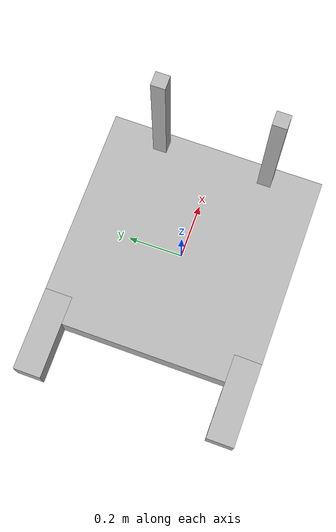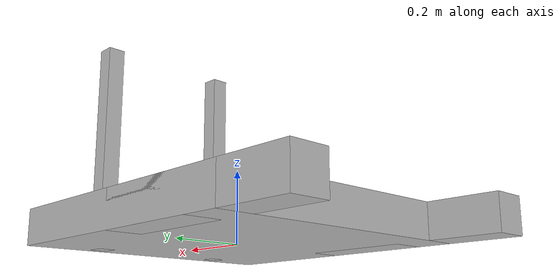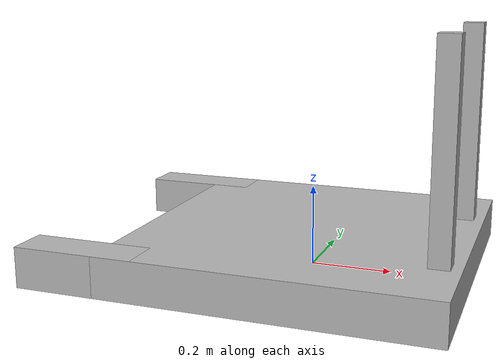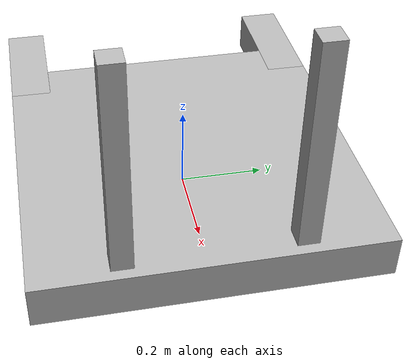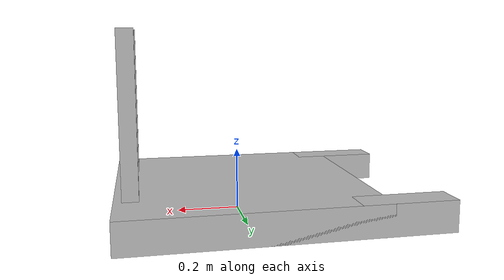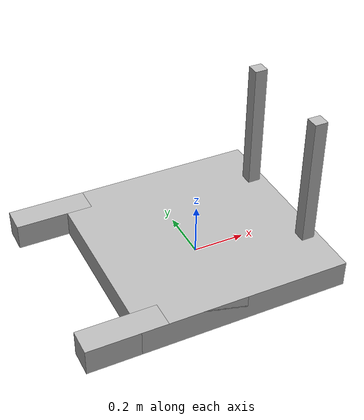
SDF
<?xml version="1.0"?>
<sdf version="1.4">
  <model name="lifter">
    <link name="back_plane">
      <pose>0 0 0.05 0 0 0</pose>
      <collision name="collision">
        <geometry>
          <box>
            <size>0.8 0.6 0.1</size>
          </box>
        </geometry>
      </collision>
      <visual name="visual">
        <geometry>
          <box>
            <size>0.8 0.8 0.1</size>
          </box>
        </geometry>
      </visual>
    </link>
    <link name="holder_a">
      <pose>-0.3 0.35 0.05 0 -1.5707 0</pose>
      <collision name="collision">
        <geometry>
          <box>
            <size>0.1 0.1 0.6</size>
          </box>
        </geometry>
      </collision>
      <visual name="visual">
        <geometry>
          <box>
            <size>0.1 0.1 0.6</size>
          </box>
        </geometry>
      </visual>
    </link>
    <link name="holder_b">
      <pose>-0.3 -0.35 0.05 0 -1.5707 0</pose>
      <collision name="collision">
        <geometry>
          <box>
            <size>0.1 0.1 0.6</size>
          </box>
        </geometry>
      </collision>
      <visual name="visual">
        <geometry>
          <box>
            <size>0.1 0.1 0.6</size>
          </box>
        </geometry>
      </visual>
    </link>

    <link name="bar_1">
      <pose>0.35 0.2 0.3 0 0 0</pose>
      <collision name="collision">
        <geometry>
          <box>
            <size>0.05 0.05 0.6</size>
          </box>
        </geometry>
      </collision>
      <visual name="visual">
        <geometry>
          <box>
            <size>0.05 0.05 0.6</size>
          </box>
        </geometry>
      </visual>
    </link>

    <link name="bar_2">
      <pose>0.35 -0.2 0.3 0 0 0</pose>
      <collision name="collision">
        <geometry>
          <box>
            <size>0.05 0.05 0.6</size>
          </box>
        </geometry>
      </collision>
      <visual name="visual">
        <geometry>
          <box>
            <size>0.05 0.05 0.6</size>
          </box>
        </geometry>
      </visual>
    </link>

    <joint type="revolute" name="bar_1_joint">
      <pose>0 -0.4 -0.3 0 0 0</pose>
      <child>bar_1</child>
      <parent>back_plane</parent>
      <axis>
        <limit>
          <lower>-1.5707</lower>
          <upper>0</upper>
        </limit>
        <xyz>0 1 0</xyz>
      </axis>
    </joint>

    <joint type="revolute" name="bar_2_joint">
      <pose> 0 0.4 -0.3 0 0 0</pose>
      <child>bar_2</child>
      <parent>back_plane</parent>
      <axis>
        <limit>
          <lower>-1.5707</lower>
          <upper>0</upper>
        </limit>
        <xyz>0 1 0</xyz>
      </axis>
    </joint>

    <joint type="prismatic" name="holder_1_joint">
      <child>holder_a</child>
      <parent>back_plane</parent>
      <axis>
        <limit>
          <lower>-0.4</lower>
          <upper>0</upper>
        </limit>
        <xyz>1 0 0</xyz>
      </axis>
    </joint>

    <joint type="prismatic" name="holder_2_joint">
      <child>holder_b</child>
      <parent>back_plane</parent>
      <axis>
        <limit>
          <lower>-0.4</lower>
          <upper>0</upper>
        </limit>
        <xyz>1 0 0</xyz>
      </axis>
    </joint>

    <static>true</static>
  </model>
</sdf>
